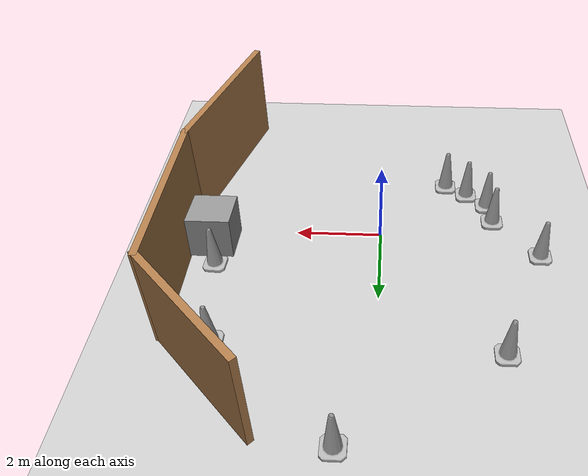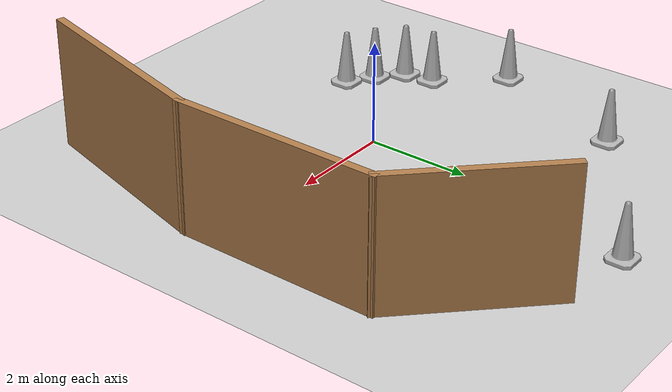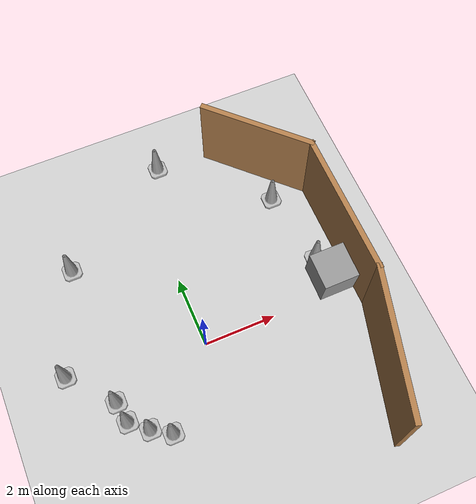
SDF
<sdf version="1.7">
 <world name="default">
  <plugin filename="gz-sim-physics-system" name="gz::sim::systems::Physics"/>
  <plugin filename="gz-sim-user-commands-system" name="gz::sim::systems::UserCommands"/>
  <plugin filename="gz-sim-scene-broadcaster-system" name="gz::sim::systems::SceneBroadcaster"/>
  <plugin filename="gz-sim-sensors-system" name="gz::sim::systems::Sensors">
   <render_engine>ogre2</render_engine>
  </plugin>
  <light name="sun" type="directional">
   <pose>0 0 10 0 -0 0</pose>
   <diffuse>0.8 0.8 0.8 1</diffuse>
   <specular>0.2 0.2 0.2 1</specular>
   <attenuation>
    <range>1000</range>
    <constant>0.9</constant>
    <linear>0.01</linear>
    <quadratic>0.001</quadratic>
   </attenuation>
   <direction>-0.5 0.1 -0.9</direction>
   <spot><inner_angle>0</inner_angle><outer_angle>0</outer_angle><falloff>0</falloff></spot>
  </light>
  <model name="ground_plane">
   <static>1</static>
   <link name="link">
    <collision name="collision">
     <geometry><plane><normal>0 0 1</normal><size>100 100</size></plane></geometry>
     <surface>
      <contact><collide_bitmask>65535</collide_bitmask></contact>
      <friction><ode><mu>100</mu><mu2>50</mu2></ode></friction>
     </surface>
    </collision>
    <visual name="visual">
     <cast_shadows>0</cast_shadows>
     <geometry><plane><normal>0 0 1</normal><size>100 100</size></plane></geometry>
     <material>
      <script><uri>file://media/materials/scripts/gazebo.material</uri><name>Gazebo/Grey</name></script>
     </material>
    </visual>
   </link>
  </model>
  <gravity>0 0 -9.8</gravity>
  <magnetic_field>6e-06 2.3e-05 -4.2e-05</magnetic_field>
  <atmosphere type="adiabatic"/>
  <physics type="ode">
   <max_step_size>0.001</max_step_size>
   <real_time_factor>1</real_time_factor>
   <real_time_update_rate>1000</real_time_update_rate>
  </physics>
  <scene><ambient>0.4 0.4 0.4 1</ambient><background>0.7 0.7 0.7 1</background><shadows>1</shadows></scene>
  <audio><device>default</device></audio>
  <spherical_coordinates>
   <surface_model>EARTH_WGS84</surface_model>
   <latitude_deg>0</latitude_deg>
   <longitude_deg>0</longitude_deg>
   <elevation>0</elevation>
   <heading_deg>0</heading_deg>
  </spherical_coordinates>
  <model name="Construction Cone">
   <link name="link">
    <collision name="collision">
     <geometry>
      <mesh><scale>10 10 10</scale><uri>model://construction_cone/meshes/construction_cone.dae</uri></mesh>
     </geometry>
    </collision>
    <visual name="visual">
     <geometry>
      <mesh><scale>10 10 10</scale><uri>model://construction_cone/meshes/construction_cone.dae</uri></mesh>
     </geometry>
    </visual>
    <inertial>
     <inertia><ixx>1</ixx><ixy>0</ixy><ixz>0</ixz><iyy>1</iyy><iyz>0</iyz><izz>1</izz></inertia>
     <mass>1</mass>
    </inertial>
   </link>
   <pose>-1.64149 -1.8737 0 0 -0 0.000608</pose>
  </model>
  <model name="Construction Cone_0">
   <link name="link">
    <collision name="collision">
     <geometry>
      <mesh><scale>10 10 10</scale><uri>model://construction_cone/meshes/construction_cone.dae</uri></mesh>
     </geometry>
    </collision>
    <visual name="visual">
     <geometry>
      <mesh><scale>10 10 10</scale><uri>model://construction_cone/meshes/construction_cone.dae</uri></mesh>
     </geometry>
    </visual>
    <inertial>
     <inertia><ixx>1</ixx><ixy>0</ixy><ixz>0</ixz><iyy>1</iyy><iyz>0</iyz><izz>1</izz></inertia>
     <mass>1</mass>
    </inertial>
   </link>
   <pose>-3.71569 0.585322 -0 0 -0 0</pose>
  </model>
  <model name="Construction Cone_1">
   <link name="link">
    <collision name="collision">
     <geometry>
      <mesh><scale>10 10 10</scale><uri>model://construction_cone/meshes/construction_cone.dae</uri></mesh>
     </geometry>
    </collision>
    <visual name="visual">
     <geometry>
      <mesh><scale>10 10 10</scale><uri>model://construction_cone/meshes/construction_cone.dae</uri></mesh>
     </geometry>
    </visual>
    <inertial>
     <inertia><ixx>1</ixx><ixy>0</ixy><ixz>0</ixz><iyy>1</iyy><iyz>0</iyz><izz>1</izz></inertia>
     <mass>1</mass>
    </inertial>
   </link>
   <pose>-2.62944 3.41056 -0 0 -0 0</pose>
  </model>
  <model name="Construction Cone_2">
   <link name="link">
    <collision name="collision">
     <geometry>
      <mesh><scale>10 10 10</scale><uri>model://construction_cone/meshes/construction_cone.dae</uri></mesh>
     </geometry>
    </collision>
    <visual name="visual">
     <geometry>
      <mesh><scale>10 10 10</scale><uri>model://construction_cone/meshes/construction_cone.dae</uri></mesh>
     </geometry>
    </visual>
    <inertial>
     <inertia><ixx>1</ixx><ixy>0</ixy><ixz>0</ixz><iyy>1</iyy><iyz>0</iyz><izz>1</izz></inertia>
     <mass>1</mass>
    </inertial>
   </link>
   <pose>3.76042 1.12691 -0 0 -0 -0.06004</pose>
  </model>
  <model name="Construction Cone_3">
   <link name="link">
    <collision name="collision">
     <geometry>
      <mesh><scale>10 10 10</scale><uri>model://construction_cone/meshes/construction_cone.dae</uri></mesh>
     </geometry>
    </collision>
    <visual name="visual">
     <geometry>
      <mesh><scale>10 10 10</scale><uri>model://construction_cone/meshes/construction_cone.dae</uri></mesh>
     </geometry>
    </visual>
    <inertial>
     <inertia><ixx>1</ixx><ixy>0</ixy><ixz>0</ixz><iyy>1</iyy><iyz>0</iyz><izz>1</izz></inertia>
     <mass>1</mass>
    </inertial>
   </link>
   <pose>3.40222 3.31664 -0 0 -1e-06 0</pose>
  </model>
  <model name="Construction Cone_4">
   <link name="link">
    <collision name="collision">
     <geometry>
      <mesh><scale>10 10 10</scale><uri>model://construction_cone/meshes/construction_cone.dae</uri></mesh>
     </geometry>
    </collision>
    <visual name="visual">
     <geometry>
      <mesh><scale>10 10 10</scale><uri>model://construction_cone/meshes/construction_cone.dae</uri></mesh>
     </geometry>
    </visual>
    <inertial>
     <inertia><ixx>1</ixx><ixy>0</ixy><ixz>0</ixz><iyy>1</iyy><iyz>0</iyz><izz>1</izz></inertia>
     <mass>1</mass>
    </inertial>
   </link>
   <pose>-2.71216 -0.556824 -0 0 -0 0</pose>
  </model>
  <model name="Construction Cone_5">
   <link name="link">
    <collision name="collision">
     <geometry>
      <mesh><scale>10 10 10</scale><uri>model://construction_cone/meshes/construction_cone.dae</uri></mesh>
     </geometry>
    </collision>
    <visual name="visual">
     <geometry>
      <mesh><scale>10 10 10</scale><uri>model://construction_cone/meshes/construction_cone.dae</uri></mesh>
     </geometry>
    </visual>
    <inertial>
     <inertia><ixx>1</ixx><ixy>0</ixy><ixz>0</ixz><iyy>1</iyy><iyz>0</iyz><izz>1</izz></inertia>
     <mass>1</mass>
    </inertial>
   </link>
   <pose>0.716051 5.5545 -0 0 -0 0</pose>
  </model>
  <model name="Construction Cone_6">
   <link name="link">
    <collision name="collision">
     <geometry>
      <mesh><scale>10 10 10</scale><uri>model://construction_cone/meshes/construction_cone.dae</uri></mesh>
     </geometry>
    </collision>
    <visual name="visual">
     <geometry>
      <mesh><scale>10 10 10</scale><uri>model://construction_cone/meshes/construction_cone.dae</uri></mesh>
     </geometry>
    </visual>
    <inertial>
     <inertia><ixx>1</ixx><ixy>0</ixy><ixz>0</ixz><iyy>1</iyy><iyz>0</iyz><izz>1</izz></inertia>
     <mass>1</mass>
    </inertial>
   </link>
   <pose>-2.61598 -1.14954 -0 0 -1e-06 0</pose>
  </model>
  <model name="Construction Cone_7">
   <link name="link">
    <collision name="collision">
     <geometry>
      <mesh><scale>10 10 10</scale><uri>model://construction_cone/meshes/construction_cone.dae</uri></mesh>
     </geometry>
    </collision>
    <visual name="visual">
     <geometry>
      <mesh><scale>10 10 10</scale><uri>model://construction_cone/meshes/construction_cone.dae</uri></mesh>
     </geometry>
    </visual>
    <inertial>
     <inertia><ixx>1</ixx><ixy>0</ixy><ixz>0</ixz><iyy>1</iyy><iyz>0</iyz><izz>1</izz></inertia>
     <mass>1</mass>
    </inertial>
   </link>
   <pose>-2.14468 -1.55334 -0 0 -1e-06 0.001002</pose>
  </model>
  <model name="Untitled">
   <pose>2.27728 0.580213 0 0 -0 0</pose>
   <link name="Wall_1">
    <collision name="Wall_1_Collision">
     <geometry><box><size>4 0.15 2.5</size></box></geometry>
     <pose>0 0 1.25 0 -0 0</pose>
    </collision>
    <visual name="Wall_1_Visual">
     <pose>0 0 1.25 0 -0 0</pose>
     <geometry><box><size>4 0.15 2.5</size></box></geometry>
     <material>
      <script><uri>file://media/materials/scripts/gazebo.material</uri><name>Gazebo/Wood</name></script>
      <ambient>1 1 1 1</ambient>
     </material>
     <meta><layer>0</layer></meta>
    </visual>
    <pose>1.67299 -3.02812 0 0 -0 -1.8326</pose>
   </link>
   <link name="Wall_3">
    <collision name="Wall_3_Collision">
     <geometry><box><size>4 0.15 2.5</size></box></geometry>
     <pose>0 0 1.25 0 -0 0</pose>
    </collision>
    <visual name="Wall_3_Visual">
     <pose>0 0 1.25 0 -0 0</pose>
     <geometry><box><size>4 0.15 2.5</size></box></geometry>
     <material>
      <script><uri>file://media/materials/scripts/gazebo.material</uri><name>Gazebo/Wood</name></script>
      <ambient>1 1 1 1</ambient>
     </material>
     <meta><layer>0</layer></meta>
    </visual>
    <pose>2.17122 0.756287 0 0 -0 1.5708</pose>
   </link>
   <link name="Wall_7">
    <collision name="Wall_7_Collision">
     <geometry><box><size>3.25 0.15 2.5</size></box></geometry>
     <pose>0 0 1.25 0 -0 0</pose>
    </collision>
    <visual name="Wall_7_Visual">
     <pose>0 0 1.25 0 -0 0</pose>
     <geometry><box><size>3.25 0.15 2.5</size></box></geometry>
     <material>
      <script><uri>file://media/materials/scripts/gazebo.material</uri><name>Gazebo/Wood</name></script>
      <ambient>1 1 1 1</ambient>
     </material>
     <meta><layer>0</layer></meta>
    </visual>
    <pose>1.0752 3.7773 0 0 -0 2.35619</pose>
   </link>
   <static>1</static>
  </model>
  <model name="unit_box">
   <pose>3.87124 0.401548 0.540475 0.084629 -0 0.0026</pose>
   <link name="link">
    <inertial>
     <mass>1</mass>
     <inertia>
      <ixx>0.166667</ixx>
      <ixy>0</ixy>
      <ixz>0</ixz>
      <iyy>0.166667</iyy>
      <iyz>0</iyz>
      <izz>0.166667</izz>
     </inertia>
    </inertial>
    <collision name="collision"><geometry><box><size>1 1 1</size></box></geometry></collision>
    <visual name="visual">
     <geometry><box><size>1 1 1</size></box></geometry>
     <material>
      <script><name>Gazebo/Grey</name><uri>file://media/materials/scripts/gazebo.material</uri></script>
     </material>
    </visual>
   </link>
  </model>
 </world>
</sdf>
